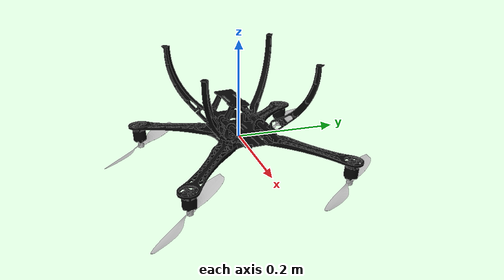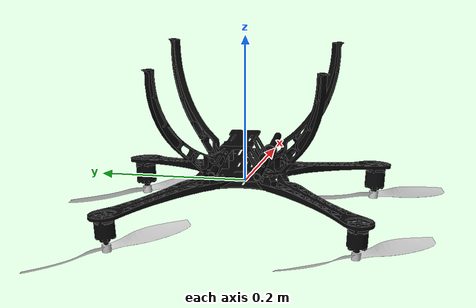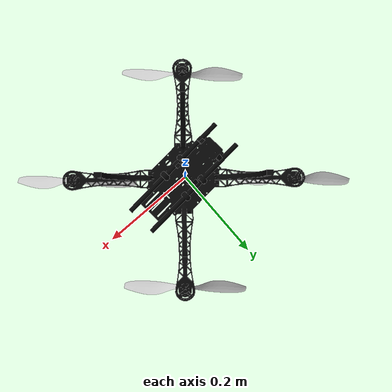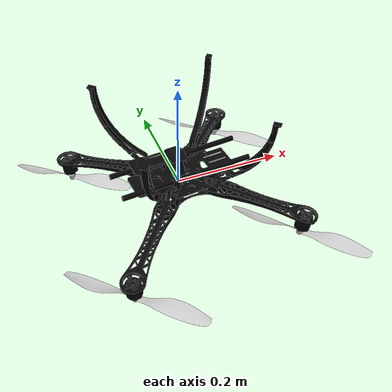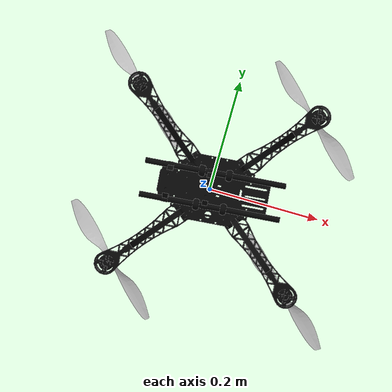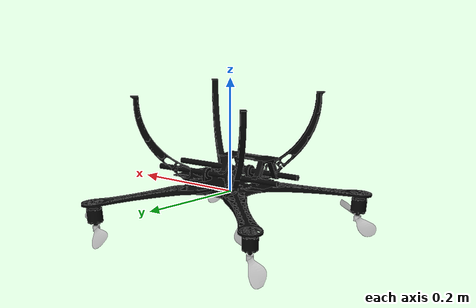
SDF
<sdf version='1.9'>
  <model name='Assem1'>
    <link name='base_link'>
      <inertial>
        <pose>0.00170644441190401 -0.00010951248939392 0.020137507133009 0 0 0</pose>
        <mass>0.287718433342603</mass>
        <inertia>
          <ixx>0.00043625048274275002</ixx>
          <ixy>-1.0528143175783e-05</ixy>
          <ixz>-6.6221664502829403e-11</ixz>
          <iyy>0.00055263825674581302</iyy>
          <iyz>-4.7656024668217597e-11</iyz>
          <izz>0.00073303749274861705</izz>
        </inertia>
      </inertial>
      <collision name='base_link_collision'>
        <pose>0 0 0 0 0 0</pose>
        <geometry>
          <mesh>
            <scale>1 1 1</scale>
            <uri>model://stupifly_description/meshes/base_link.STL</uri>
          </mesh>
        </geometry>
      </collision>
      <visual name='base_link_visual'>
        <pose>0 0 0 0 0 0</pose>
        <geometry>
          <mesh>
            <scale>1 1 1</scale>
            <uri>model://stupifly_description/meshes/base_link.STL</uri>
          </mesh>
        </geometry>
        <material>
          <diffuse>0.0245098 0.0245098 0.0245098 1</diffuse>
          <ambient>0.0245098 0.0245098 0.0245098 1</ambient>
        </material>
      </visual>
    </link>
    <joint name='Blue_prop1' type='revolute'>
      <pose relative_to='base_link'>-0.17257 0.14811 -0.052109 -0.09484899999999999 -0.04445100000000001 0.43793</pose>
      <parent>base_link</parent>
      <child>B_prop1_Link</child>
      <axis>
        <xyz>0 0 1</xyz>
        <limit>
          <effort>10</effort>
          <velocity>900</velocity>
          <lower>-10000000000000000</lower>
          <upper>10000000000000000</upper>
        </limit>
        <dynamics>
          <damping>0.001</damping>
          <friction>0.001</friction>
          <spring_reference>0</spring_reference>
          <spring_stiffness>0</spring_stiffness>
        </dynamics>
      </axis>
    </joint>
    <link name='B_prop1_Link'>
      <pose relative_to='Blue_prop1'>0 0 0 0 0 0</pose>
      <inertial>
        <pose>7.31459151581682e-07 -2.01874710653582e-06 -0.00617262757614656 0 0 0</pose>
        <mass>0.0047056040020822297</mass>
        <inertia>
          <ixx>1.85522428966344e-05</ixx>
          <ixy>7.79017193825592e-06</ixy>
          <ixz>-3.5883541348060902e-12</ixz>
          <iyy>3.4554203858860999e-06</iyy>
          <iyz>1.3959908485915e-11</iyz>
          <izz>2.19436691246909e-05</izz>
        </inertia>
      </inertial>
      <collision name='B_prop1_Link_collision'>
        <pose>0 0 0 0 0 0</pose>
        <geometry>
          <mesh>
            <scale>1 1 1</scale>
            <uri>model://stupifly_description/meshes/B_prop1_Link.STL</uri>
          </mesh>
        </geometry>
      </collision>
      <visual name='B_prop1_Link_visual'>
        <pose>0 0 0 0 0 0</pose>
        <geometry>
          <mesh>
            <scale>1 1 1</scale>
            <uri>model://stupifly_description/meshes/B_prop1_Link.STL</uri>
          </mesh>
        </geometry>
        <material>
          <diffuse>0.784314 0.784314 0.784314 1</diffuse>
          <ambient>0.784314 0.784314 0.784314 1</ambient>
        </material>
      </visual>
    </link>
    <joint name='Blue_prop2' type='revolute'>
      <pose relative_to='base_link'>-0.1434 -0.17706 -0.051992 0.015067 -0.10363 0.73026</pose>
      <parent>base_link</parent>
      <child>B_prop2_Link</child>
      <axis>
        <xyz>0 0 1</xyz>
        <limit>
          <effort>10</effort>
          <velocity>900</velocity>
          <lower>-10000000000000000</lower>
          <upper>10000000000000000</upper>
        </limit>
        <dynamics>
          <damping>0.01</damping>
          <friction>0.01</friction>
          <spring_reference>0</spring_reference>
          <spring_stiffness>0</spring_stiffness>
        </dynamics>
      </axis>
    </joint>
    <link name='B_prop2_Link'>
      <pose relative_to='Blue_prop2'>0 0 0 0 0 0</pose>
      <inertial>
        <pose>1.83252260643751e-07 -1.98326826152118e-06 -0.00617266232573843 0 0 0</pose>
        <mass>0.00470560155567302</mass>
        <inertia>
          <ixx>2.1607987517363399e-05</ixx>
          <ixy>2.2837779424479901e-06</ixy>
          <ixz>-1.1921805654799701e-12</ixz>
          <iyy>3.9960494981713e-07</iyy>
          <iyz>4.4653799645778301e-12</iyz>
          <izz>2.19435983745731e-05</izz>
        </inertia>
      </inertial>
      <collision name='B_prop2_Link_collision'>
        <pose>0 0 0 0 0 0</pose>
        <geometry>
          <mesh>
            <scale>1 1 1</scale>
            <uri>model://stupifly_description/meshes/B_prop2_Link.STL</uri>
          </mesh>
        </geometry>
      </collision>
      <visual name='B_prop2_Link_visual'>
        <pose>0 0 0 0 0 0</pose>
        <geometry>
          <mesh>
            <scale>1 1 1</scale>
            <uri>model://stupifly_description/meshes/B_prop2_Link.STL</uri>
          </mesh>
        </geometry>
        <material>
          <diffuse>0.784314 0.784314 0.784314 1</diffuse>
          <ambient>0.784314 0.784314 0.784314 1</ambient>
        </material>
      </visual>
    </link>
    <joint name='White_prop3' type='revolute'>
      <pose relative_to='base_link'>0.1819 -0.14798 -0.050454 0.10376 0.014184 0.73953</pose>
      <parent>base_link</parent>
      <child>W_prop3_Link</child>
      <axis>
        <xyz>0 0 1</xyz>
        <limit>
          <effort>10</effort>
          <velocity>900</velocity>
          <lower>-10000000000000000</lower>
          <upper>10000000000000000</upper>
        </limit>
        <dynamics>
          <damping>0.01</damping>
          <friction>0.01</friction>
          <spring_reference>0</spring_reference>
          <spring_stiffness>0</spring_stiffness>
        </dynamics>
      </axis>
    </joint>
    <link name='W_prop3_Link'>
      <pose relative_to='White_prop3'>0 0 0 0 0 0</pose>
      <inertial>
        <pose>-1.28649024433436e-07 -2.19146189972541e-07 -0.00617277347433426 0 0 0</pose>
        <mass>0.0047054486798630097</mass>
        <inertia>
          <ixx>2.16068682565638e-05</ixx>
          <ixy>2.2825990392904501e-06</ixy>
          <ixz>2.4895087422351199e-12</ixz>
          <iyy>3.9936138938589699e-07</iyy>
          <iyz>4.7092728291607001e-12</iyz>
          <izz>2.19422332847507e-05</izz>
        </inertia>
      </inertial>
      <collision name='W_prop3_Link_collision'>
        <pose>0 0 0 0 0 0</pose>
        <geometry>
          <mesh>
            <scale>1 1 1</scale>
            <uri>model://stupifly_description/meshes/W_prop3_Link.STL</uri>
          </mesh>
        </geometry>
      </collision>
      <visual name='W_prop3_Link_visual'>
        <pose>0 0 0 0 0 0</pose>
        <geometry>
          <mesh>
            <scale>1 1 1</scale>
            <uri>model://stupifly_description/meshes/W_prop3_Link.STL</uri>
          </mesh>
        </geometry>
        <material>
          <diffuse>0.784314 0.784314 0.784314 1</diffuse>
          <ambient>0.784314 0.784314 0.784314 1</ambient>
        </material>
      </visual>
    </link>
    <joint name='White_prop4' type='revolute'>
      <pose relative_to='base_link'>0.15258 0.17729 -0.052087 -0.01528799999999999 0.1036 0.7281199999999999</pose>
      <parent>base_link</parent>
      <child>W_prop4_Link</child>
      <axis>
        <xyz>0 0 1</xyz>
        <limit>
          <effort>10</effort>
          <velocity>900</velocity>
          <lower>-10000000000000000</lower>
          <upper>10000000000000000</upper>
        </limit>
        <dynamics>
          <damping>0.01</damping>
          <friction>0.01</friction>
          <spring_reference>0</spring_reference>
          <spring_stiffness>0</spring_stiffness>
        </dynamics>
      </axis>
    </joint>
    <link name='W_prop4_Link'>
      <pose relative_to='White_prop4'>0 0 0 0 0 0</pose>
      <inertial>
        <pose>-1.90927498158744e-07 -3.74112121726e-07 -0.00617235089568641 0 0 0</pose>
        <mass>0.0047057749017012799</mass>
        <inertia>
          <ixx>2.1566225021485799e-05</ixx>
          <ixy>2.4777528435492699e-06</ixy>
          <ixz>6.3531279055652199e-12</ixz>
          <iyy>4.43219552098724e-07</iyy>
          <iyz>2.3552311370664901e-11</iyz>
          <izz>2.1945454703146501e-05</izz>
        </inertia>
      </inertial>
      <collision name='W_prop4_Link_collision'>
        <pose>0 0 0 0 0 0</pose>
        <geometry>
          <mesh>
            <scale>1 1 1</scale>
            <uri>model://stupifly_description/meshes/W_prop4_Link.STL</uri>
          </mesh>
        </geometry>
      </collision>
      <visual name='W_prop4_Link_visual'>
        <pose>0 0 0 0 0 0</pose>
        <geometry>
          <mesh>
            <scale>1 1 1</scale>
            <uri>model://stupifly_description/meshes/W_prop4_Link.STL</uri>
          </mesh>
        </geometry>
        <material>
          <diffuse>0.784314 0.784314 0.784314 1</diffuse>
          <ambient>0.784314 0.784314 0.784314 1</ambient>
        </material>
      </visual>
    </link>
  </model>
</sdf>
